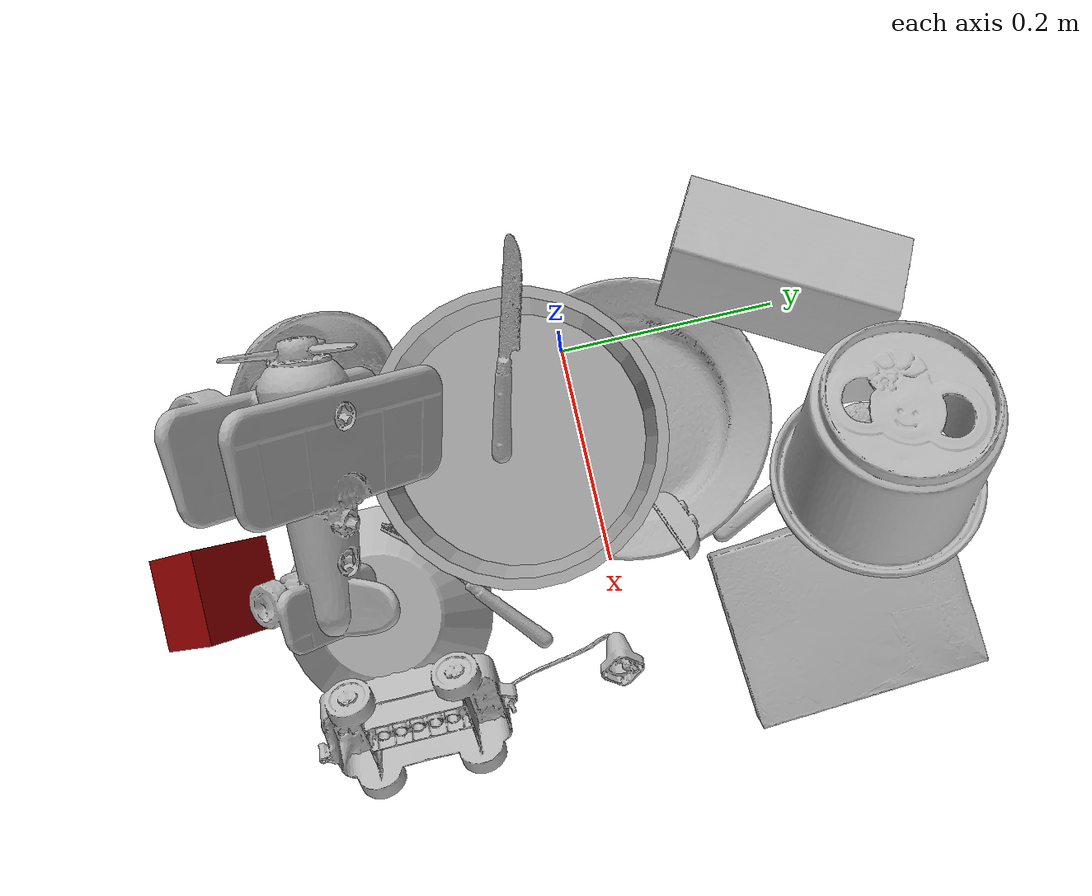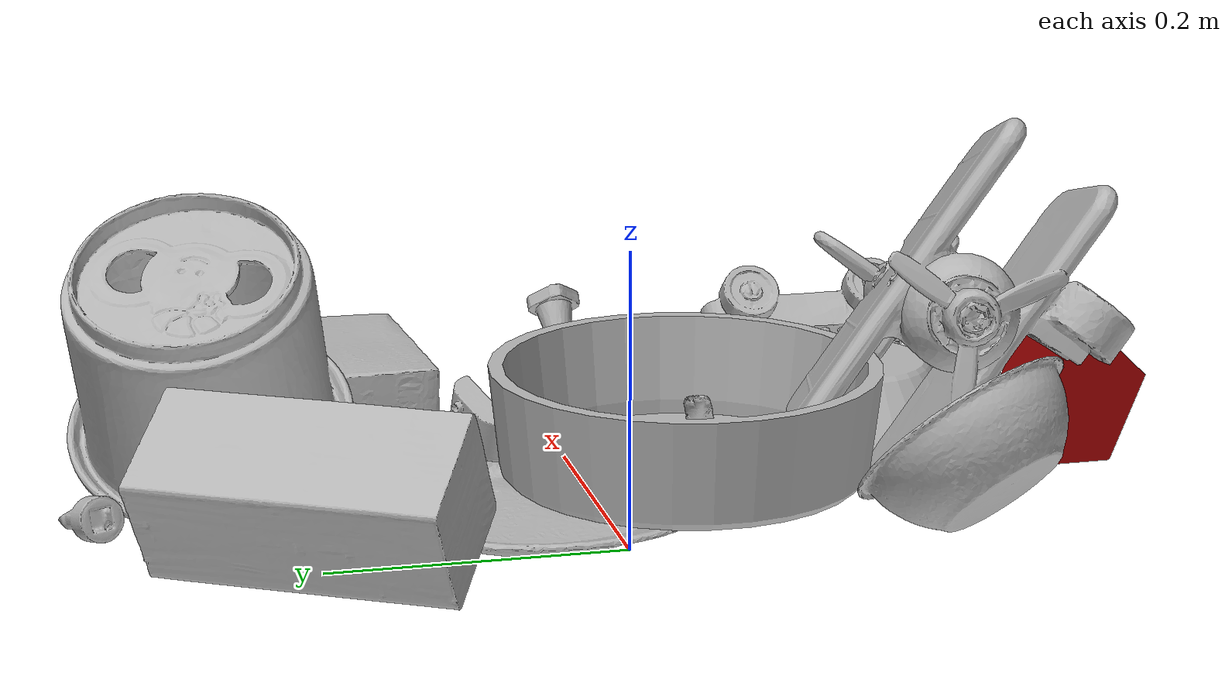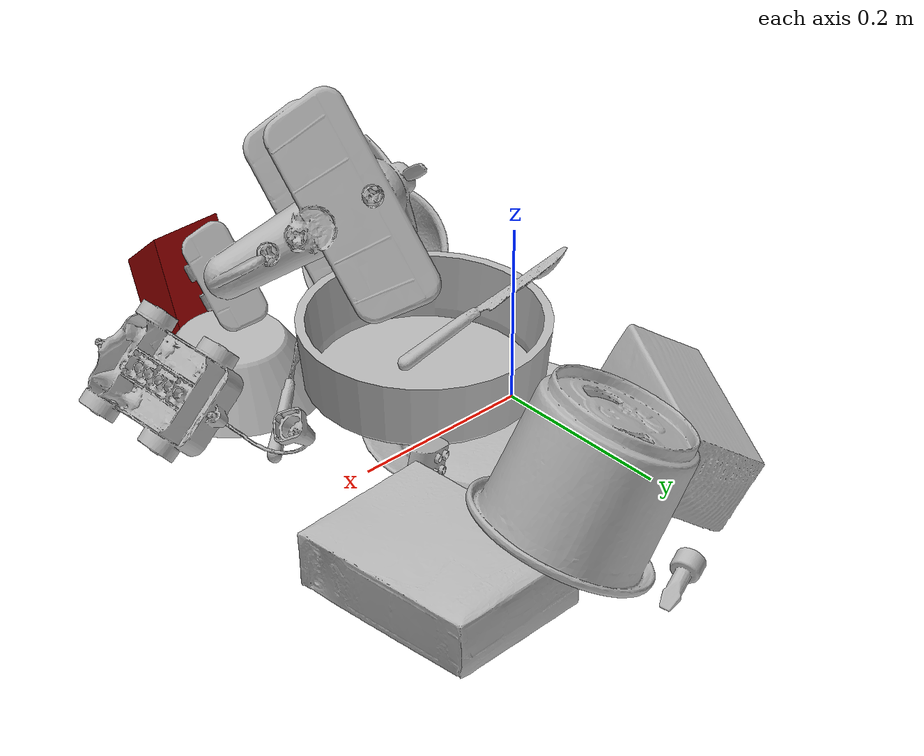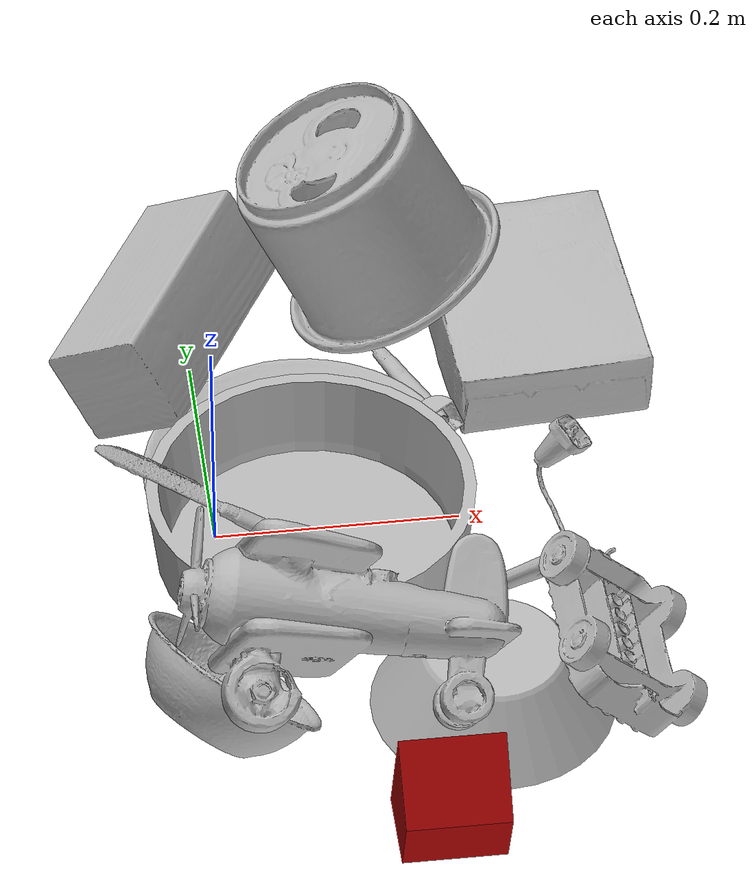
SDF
<sdf version="1.4">
  <world name="default">
    <light name="light1" type="point">
      <pose>0 0 1 0 0 0</pose>
      <diffuse>3 3 3 1</diffuse>
      <specular>3 3 3 1</specular>
    </light>
    <light name="light2" type="point">
      <pose>0 0.5 2 0 0 0</pose>
      <diffuse>1 1 1 1</diffuse>
      <specular>1 1 1 1</specular>
    </light>
    <light name="light3" type="point">
      <pose>0 0.5 2 0 0 0</pose>
      <diffuse>3 3 3 1</diffuse>
      <specular>3 3 3 1</specular>
    </light>
    <scene>
      <ambient>0.7 0.7 0.7</ambient>
    </scene>
    <model name="plate1">
      <link name="link_plate1">
        <collision name="default">
          <geometry>
            <mesh>
              <uri>model://plate/collision_meshes/collision.obj</uri>
              <scale>1.0 1.0 1.0</scale>
            </mesh>
          </geometry>
          <surface>
            <friction>
              <ode>
                <mu>0.5</mu>
                <mu2>0.5</mu2>
              </ode>
            </friction>
          <contact>
        <ode>
            <max_vel>0</max_vel>
            <min_depth>0.0001</min_depth>
            <kp>1e8</kp>
        </ode>
    </contact></surface>
        </collision>
        <visual name="default">
          <geometry>
            <mesh>
              <uri>model://plate/visual_meshes/visual.dae</uri>
              <scale>1.0 1.0 1.0</scale>
            </mesh>
          </geometry>
        </visual>
        <inertial>
          <mass>0.18013060092926025</mass>
          <pose>-0.0006044624606147408 0.0002782579977065325 -0.0010561981471255422 0.0022187543261248163 -0.003225499970721242 0.452618951787785</pose>
          <inertia>
            <ixx>0.00084265455</ixx>
            <iyy>0.000834595</iyy>
            <izz>0.0016481068</izz>
            <ixy>0</ixy>
            <ixz>0</ixz>
            <iyz>0</iyz>
          </inertia>
        </inertial>
      </link>
      <pose>0.07611431926488876 0.04691082984209061 0.014048775658011436 0.001392436251451052 -0.004309248841746338 0.48402125668768414</pose>
    </model>
    <model name="plate2">
      <link name="link_plate2">
        <collision name="default">
          <geometry>
            <mesh>
              <uri>model://pan_tefal/collision_meshes/collision.obj</uri>
              <scale>1.0 1.0 1.0</scale>
            </mesh>
          </geometry>
          <surface>
            <friction>
              <ode>
                <mu>0.5</mu>
                <mu2>0.5</mu2>
              </ode>
            </friction>
          <contact>
        <ode>
            <max_vel>0</max_vel>
            <min_depth>0.0001</min_depth>
            <kp>1e8</kp>
        </ode>
    </contact></surface>
        </collision>
        <visual name="default">
          <geometry>
            <mesh>
              <uri>model://pan_tefal/visual_meshes/visual.dae</uri>
              <scale>1.0 1.0 1.0</scale>
            </mesh>
          </geometry>
        </visual>
        <inertial>
          <mass>1.1554980278015137</mass>
          <pose>-0.00018001958960667253 3.279018710600212e-05 -0.008514934219419956 0.0008190268412404128 -0.0003301434555644904 -0.33185316474518306</pose>
          <inertia>
            <ixx>0.007976347</ixx>
            <iyy>0.008027771</iyy>
            <izz>0.014682918</izz>
            <ixy>0</ixy>
            <ixz>0</ixz>
            <iyz>0</iyz>
          </inertia>
        </inertial>
      </link>
      <pose>0.0725797563791275 -0.055441368371248245 0.064163438975811 0.0011067661375380624 -0.00325836222972426 0.7324127728434017</pose>
    </model>
    <model name="bowl1">
      <link name="link_bowl1">
        <collision name="default">
          <geometry>
            <mesh>
              <uri>model://bowl/collision_meshes/collision.obj</uri>
              <scale>1.0 1.0 1.0</scale>
            </mesh>
          </geometry>
          <surface>
            <friction>
              <ode>
                <mu>0.5</mu>
                <mu2>0.5</mu2>
              </ode>
            </friction>
          <contact>
        <ode>
            <max_vel>0</max_vel>
            <min_depth>0.0001</min_depth>
            <kp>1e8</kp>
        </ode>
    </contact></surface>
        </collision>
        <visual name="default">
          <geometry>
            <mesh>
              <uri>model://bowl/visual_meshes/visual.dae</uri>
              <scale>1.0 1.0 1.0</scale>
            </mesh>
          </geometry>
        </visual>
        <inertial>
          <mass>0.08154366910457611</mass>
          <pose>0.0002044497523456812 -0.0010302083101123571 -0.0008042664267122746 -0.01576409235239578 0.014546819263349199 0.7140418673414882</pose>
          <inertia>
            <ixx>0.00018731231</ixx>
            <iyy>0.000183127</iyy>
            <izz>0.00031512365</izz>
            <ixy>0</ixy>
            <ixz>0</ixz>
            <iyz>0</iyz>
          </inertia>
        </inertial>
      </link>
      <pose>-0.021872175857424736 -0.23212486505508423 0.05180564522743225 0.7851160048859591 -0.19579409163485445 2.344805249619409</pose>
    </model>
    <model name="bowl2">
      <link name="link_bowl2">
        <collision name="default">
          <geometry>
            <mesh>
              <uri>model://bowl_a/collision_meshes/collision.obj</uri>
              <scale>1.0 1.0 1.0</scale>
            </mesh>
          </geometry>
          <surface>
            <friction>
              <ode>
                <mu>0.5</mu>
                <mu2>0.5</mu2>
              </ode>
            </friction>
          <contact>
        <ode>
            <max_vel>0</max_vel>
            <min_depth>0.0001</min_depth>
            <kp>1e8</kp>
        </ode>
    </contact></surface>
        </collision>
        <visual name="default">
          <geometry>
            <mesh>
              <uri>model://bowl_a/visual_meshes/visual.dae</uri>
              <scale>1.0 1.0 1.0</scale>
            </mesh>
          </geometry>
        </visual>
        <inertial>
          <mass>0.4363987147808075</mass>
          <pose>0.0002786752884276211 4.73113359475974e-05 -0.0013765294570475817 -0.0009805318297205425 -0.0010938254473046036 -0.19123908587825994</pose>
          <inertia>
            <ixx>0.0012424473</ixx>
            <iyy>0.001250075</iyy>
            <izz>0.0022097398</izz>
            <ixy>0</ixy>
            <ixz>0</ixz>
            <iyz>0</iyz>
          </inertia>
        </inertial>
      </link>
      <pose>0.19921106100082397 -0.21214506030082703 0.030101153999567032 3.141576884474311 5.16324751641293e-06 0.954296284068788</pose>
    </model>
    <model name="silverware1">
      <link name="link_silverware1">
        <collision name="default">
          <geometry>
            <mesh>
              <uri>model://spoon/collision_meshes/collision.obj</uri>
              <scale>1.0 1.0 1.0</scale>
            </mesh>
          </geometry>
          <surface>
            <friction>
              <ode>
                <mu>0.5</mu>
                <mu2>0.5</mu2>
              </ode>
            </friction>
          <contact>
        <ode>
            <max_vel>0</max_vel>
            <min_depth>0.0001</min_depth>
            <kp>1e8</kp>
        </ode>
    </contact></surface>
        </collision>
        <visual name="default">
          <geometry>
            <mesh>
              <uri>model://spoon/visual_meshes/visual.dae</uri>
              <scale>1.0 1.0 1.0</scale>
            </mesh>
          </geometry>
        </visual>
        <inertial>
          <mass>0.034700214862823486</mass>
          <pose>-0.00552632100880146 -0.0016034168656915426 -0.0007271654903888702 0.03521477925438783 -0.03906582568380071 0.006150611591128785</pose>
          <inertia>
            <ixx>1.9300821e-06</ixx>
            <iyy>0.00013203312</iyy>
            <izz>0.00013298499</izz>
            <ixy>0</ixy>
            <ixz>0</ixz>
            <iyz>0</iyz>
          </inertia>
        </inertial>
      </link>
      <pose>0.16089767217636108 0.18981842696666718 0.010133577510714531 3.1049922051838084 -0.06197781871519313 2.0198299134235613</pose>
    </model>
    <model name="box1">
      <link name="link_box1">
        <collision name="default">
          <geometry>
            <mesh>
              <uri>model://cracker_box/collision_meshes/collision.obj</uri>
              <scale>1.0 1.0 1.0</scale>
            </mesh>
          </geometry>
          <surface>
            <friction>
              <ode>
                <mu>0.5</mu>
                <mu2>0.5</mu2>
              </ode>
            </friction>
          <contact>
        <ode>
            <max_vel>0</max_vel>
            <min_depth>0.0001</min_depth>
            <kp>1e8</kp>
        </ode>
    </contact></surface>
        </collision>
        <visual name="default">
          <geometry>
            <mesh>
              <uri>model://cracker_box/visual_meshes/visual.dae</uri>
              <scale>1.0 1.0 1.0</scale>
            </mesh>
          </geometry>
        </visual>
        <inertial>
          <mass>1.831273078918457</mass>
          <pose>0.000946414191275835 0.00025434247800149024 -0.0017029533628374338 -0.0003162074786093215 -0.01110648680647863 0.0025467950006863548</pose>
          <inertia>
            <ixx>0.0046579414</ixx>
            <iyy>0.0076911766</iyy>
            <izz>0.010976015</izz>
            <ixy>0</ixy>
            <ixz>0</ixz>
            <iyz>0</iyz>
          </inertia>
        </inertial>
      </link>
      <pose>0.2861180901527405 0.19917824864387512 0.035531334578990936 3.137204173567486 -0.016543004172524373 1.6431319057917784</pose>
    </model>
    <model name="box2">
      <link name="link_box2">
        <collision name="default">
          <geometry>
            <mesh>
              <uri>model://wood_block/collision_meshes/collision.obj</uri>
              <scale>1.0 1.0 1.0</scale>
            </mesh>
          </geometry>
          <surface>
            <friction>
              <ode>
                <mu>0.5</mu>
                <mu2>0.5</mu2>
              </ode>
            </friction>
          <contact>
        <ode>
            <max_vel>0</max_vel>
            <min_depth>0.0001</min_depth>
            <kp>1e8</kp>
        </ode>
    </contact></surface>
        </collision>
        <visual name="default">
          <geometry>
            <mesh>
              <uri>model://wood_block/visual_meshes/visual.dae</uri>
              <scale>1.0 1.0 1.0</scale>
            </mesh>
          </geometry>
        </visual>
        <inertial>
          <mass>1.0038666725158691</mass>
          <pose>-5.813315510749817e-06 -0.000570809468626976 0.0002640858292579651 -0.05221020962952386 -0.005192696059900718 -0.006861377701075274</pose>
          <inertia>
            <ixx>0.0013433257</ixx>
            <iyy>0.0042435657</iyy>
            <izz>0.0042276927</izz>
            <ixy>0</ixy>
            <ixz>0</ixz>
            <iyz>0</iyz>
          </inertia>
        </inertial>
      </link>
      <pose>-0.019862249493598938 0.20906616747379303 0.059366654604673386 1.0518770805923816 -0.001503038929604439 1.0719479782102317</pose>
    </model>
    <model name="cup1">
      <link name="link_cup1">
        <collision name="default">
          <geometry>
            <mesh>
              <uri>model://i_cups/collision_meshes/collision.obj</uri>
              <scale>2.0 2.0 2.0</scale>
            </mesh>
          </geometry>
          <surface>
            <friction>
              <ode>
                <mu>0.5</mu>
                <mu2>0.5</mu2>
              </ode>
            </friction>
          <contact>
        <ode>
            <max_vel>0</max_vel>
            <min_depth>0.0001</min_depth>
            <kp>1e8</kp>
        </ode>
    </contact></surface>
        </collision>
        <visual name="default">
          <geometry>
            <mesh>
              <uri>model://i_cups/visual_meshes/visual.dae</uri>
              <scale>2.0 2.0 2.0</scale>
            </mesh>
          </geometry>
        </visual>
        <inertial>
          <mass>0.6038269996643066</mass>
          <pose>0.00022479970357380807 0.0003359453985467553 -0.001715799910016358 -0.02898255198870416 -0.03987340808103542 -0.3459203892901821</pose>
          <inertia>
            <ixx>0.0033440301</ixx>
            <iyy>0.003373493</iyy>
            <izz>0.0037374943</izz>
            <ixy>0</ixy>
            <ixz>0</ixz>
            <iyz>0</iyz>
          </inertia>
        </inertial>
      </link>
      <pose>0.14848269522190094 0.26144999265670776 0.11038369685411453 2.66217503031617 0.08866232002015055 1.451758432953369</pose>
    </model>
    <model name="silverware2">
      <link name="link_silverware2">
        <collision name="default">
          <geometry>
            <mesh>
              <uri>model://knife/collision_meshes/collision.obj</uri>
              <scale>1.0 1.0 1.0</scale>
            </mesh>
          </geometry>
          <surface>
            <friction>
              <ode>
                <mu>0.5</mu>
                <mu2>0.5</mu2>
              </ode>
            </friction>
          <contact>
        <ode>
            <max_vel>0</max_vel>
            <min_depth>0.0001</min_depth>
            <kp>1e8</kp>
        </ode>
    </contact></surface>
        </collision>
        <visual name="default">
          <geometry>
            <mesh>
              <uri>model://knife/visual_meshes/visual.dae</uri>
              <scale>1.0 1.0 1.0</scale>
            </mesh>
          </geometry>
        </visual>
        <inertial>
          <mass>0.01351180113852024</mass>
          <pose>-0.023785246536135674 0.0015275131445378065 5.062015407020226e-05 0.073058244240525 0.017248418380522417 -0.007409818685807072</pose>
          <inertia>
            <ixx>3.8351965e-07</ixx>
            <iyy>5.1910156e-05</iyy>
            <izz>5.2033673e-05</izz>
            <ixy>0</ixy>
            <ixz>0</ixz>
            <iyz>0</iyz>
          </inertia>
        </inertial>
      </link>
      <pose>-0.0033665522933006287 -0.046924132853746414 0.08453734219074249 -0.1398582149236266 -0.454266553641615 2.839677720234634</pose>
    </model>
    <model name="silverware3">
      <link name="link_silverware3">
        <collision name="default">
          <geometry>
            <mesh>
              <uri>model://fork/collision_meshes/collision.obj</uri>
              <scale>1.0 1.0 1.0</scale>
            </mesh>
          </geometry>
          <surface>
            <friction>
              <ode>
                <mu>0.5</mu>
                <mu2>0.5</mu2>
              </ode>
            </friction>
          <contact>
        <ode>
            <max_vel>0</max_vel>
            <min_depth>0.0001</min_depth>
            <kp>1e8</kp>
        </ode>
    </contact></surface>
        </collision>
        <visual name="default">
          <geometry>
            <mesh>
              <uri>model://fork/visual_meshes/visual.dae</uri>
              <scale>1.0 1.0 1.0</scale>
            </mesh>
          </geometry>
        </visual>
        <inertial>
          <mass>0.030749449506402016</mass>
          <pose>-0.029570044949650764 0.0004658822435885668 0.00032188615296036005 -0.013551266353778695 -0.010977839115777554 0.014453902178384312</pose>
          <inertia>
            <ixx>1.0779423e-06</ixx>
            <iyy>8.0277954e-05</iyy>
            <izz>8.076011e-05</izz>
            <ixy>0</ixy>
            <ixz>0</ixz>
            <iyz>0</iyz>
          </inertia>
        </inertial>
      </link>
      <pose>0.19028599560260773 -0.12934717535972595 0.03806070238351822 -1.6603293402023398 -0.3258935466727258 -2.47416889465025</pose>
    </model>
    <model name="toy1">
      <link name="link_toy1">
        <collision name="default">
          <geometry>
            <mesh>
              <uri>model://e_toy_airplane/collision_meshes/collision.obj</uri>
              <scale>1.0 1.0 1.0</scale>
            </mesh>
          </geometry>
          <surface>
            <friction>
              <ode>
                <mu>0.5</mu>
                <mu2>0.5</mu2>
              </ode>
            </friction>
          <contact>
        <ode>
            <max_vel>0</max_vel>
            <min_depth>0.0001</min_depth>
            <kp>1e8</kp>
        </ode>
    </contact></surface>
        </collision>
        <visual name="default">
          <geometry>
            <mesh>
              <uri>model://e_toy_airplane/visual_meshes/visual.dae</uri>
              <scale>1.0 1.0 1.0</scale>
            </mesh>
          </geometry>
        </visual>
        <inertial>
          <mass>0.01770107075572014</mass>
          <pose>0.00011740486661437899 -2.248296732432209e-05 -0.011187206022441387 0.005518513464699853 0.009228302242376646 0.15041570361631973</pose>
          <inertia>
            <ixx>5.4025695e-06</ixx>
            <iyy>5.3473045e-06</iyy>
            <izz>1.6236847e-06</izz>
            <ixy>0</ixy>
            <ixz>0</ixz>
            <iyz>0</iyz>
          </inertia>
        </inertial>
      </link>
      <pose>0.11316162347793579 0.3440079689025879 0.010808710008859634 -2.145174459698433 1.1028206572408112 -1.7339096086101569</pose>
    </model>
    <model name="toy2">
      <link name="link_toy2">
        <collision name="default">
          <geometry>
            <mesh>
              <uri>model://a_toy_airplane/collision_meshes/collision.obj</uri>
              <scale>1.0 1.0 1.0</scale>
            </mesh>
          </geometry>
          <surface>
            <friction>
              <ode>
                <mu>0.5</mu>
                <mu2>0.5</mu2>
              </ode>
            </friction>
          <contact>
        <ode>
            <max_vel>0</max_vel>
            <min_depth>0.0001</min_depth>
            <kp>1e8</kp>
        </ode>
    </contact></surface>
        </collision>
        <visual name="default">
          <geometry>
            <mesh>
              <uri>model://a_toy_airplane/visual_meshes/visual.dae</uri>
              <scale>1.0 1.0 1.0</scale>
            </mesh>
          </geometry>
        </visual>
        <inertial>
          <mass>1.6391528844833374</mass>
          <pose>0.02516508661210537 -0.003707319963723421 -0.0011962438002228737 -0.012016999892079352 -0.14663507149587088 0.004149061575203148</pose>
          <inertia>
            <ixx>0.0059525487</ixx>
            <iyy>0.008674072</iyy>
            <izz>0.01015627</izz>
            <ixy>0</ixy>
            <ixz>0</ixz>
            <iyz>0</iyz>
          </inertia>
        </inertial>
      </link>
      <pose>0.08022744208574295 -0.2344895452260971 0.13222648203372955 0.9022676400269117 -0.07472484719220188 -3.112732372392692</pose>
    </model>
    <model name="toy3">
      <link name="link_toy3">
        <collision name="default">
          <geometry>
            <mesh>
              <uri>model://g_lego_duplo/collision_meshes/collision.obj</uri>
              <scale>1.0 1.0 1.0</scale>
            </mesh>
          </geometry>
          <surface>
            <friction>
              <ode>
                <mu>0.5</mu>
                <mu2>0.5</mu2>
              </ode>
            </friction>
          <contact>
        <ode>
            <max_vel>0</max_vel>
            <min_depth>0.0001</min_depth>
            <kp>1e8</kp>
        </ode>
    </contact></surface>
        </collision>
        <visual name="default">
          <geometry>
            <mesh>
              <uri>model://g_lego_duplo/visual_meshes/visual.dae</uri>
              <scale>1.0 1.0 1.0</scale>
            </mesh>
          </geometry>
        </visual>
        <inertial>
          <mass>0.5092288255691528</mass>
          <pose>-0.05004768446087837 0.0017554641235619783 0.0038806775119155645 0.010963010010498962 0.03810823590924119 -0.09653024292159736</pose>
          <inertia>
            <ixx>0.00073787844</ixx>
            <iyy>0.002230844</iyy>
            <izz>0.002790868</izz>
            <ixy>0</ixy>
            <ixz>0</ixz>
            <iyz>0</iyz>
          </inertia>
        </inertial>
      </link>
      <pose>0.2944890558719635 -0.14186200499534607 0.054993852972984314 -2.4018425092536413 -1.179367262897062e-05 1.5930614114313608</pose>
    </model>
    <model name="toy4">
      <link name="link_toy4">
        <collision name="default">
          <geometry>
            <mesh>
              <uri>model://a_lego_duplo/collision_meshes/collision.obj</uri>
              <scale>1.0 1.0 1.0</scale>
            </mesh>
          </geometry>
          <surface>
            <friction>
              <ode>
                <mu>0.5</mu>
                <mu2>0.5</mu2>
              </ode>
            </friction>
          <contact>
        <ode>
            <max_vel>0</max_vel>
            <min_depth>0.0001</min_depth>
            <kp>1e8</kp>
        </ode>
    </contact></surface>
        </collision>
        <visual name="default">
          <geometry>
            <mesh>
              <uri>model://a_lego_duplo/visual_meshes/visual.dae</uri>
              <scale>1.0 1.0 1.0</scale>
            </mesh>
          </geometry>
        </visual>
        <inertial>
          <mass>0.03161923587322235</mass>
          <pose>-0.00011337598698446527 0.00018517524586059153 0.00036926084430888295 -0.014116977368405541 -0.00012565500284871778 6.143069663272407e-05</pose>
          <inertia>
            <ixx>4.0538393e-06</ixx>
            <iyy>9.081488e-06</iyy>
            <izz>1.1249442e-05</izz>
            <ixy>0</ixy>
            <ixz>0</ixz>
            <iyz>0</iyz>
          </inertia>
        </inertial>
      </link>
      <pose>0.1770833134651184 0.0700363889336586 0.03854520246386528 -1.6201187269815478 -0.3292286399646808 0.3732841329073729</pose>
    </model>
    <model name="toy5">
      <link name="link_toy5">
        <collision name="default">
          <geometry>
            <mesh>
              <uri>model://prism/collision_meshes/collision.obj</uri>
              <scale>1.0 1.0 1.0</scale>
            </mesh>
          </geometry>
          <surface>
            <friction>
              <ode>
                <mu>0.5</mu>
                <mu2>0.5</mu2>
              </ode>
            </friction>
          <contact>
        <ode>
            <max_vel>0</max_vel>
            <min_depth>0.0001</min_depth>
            <kp>1e8</kp>
        </ode>
    </contact></surface>
        </collision>
        <visual name="default">
          <geometry>
            <mesh>
              <uri>model://prism/visual_meshes/visual.dae</uri>
              <scale>1.0 1.0 1.0</scale>
            </mesh>
          </geometry>
        </visual>
        <inertial>
          <mass>0.5650969743728638</mass>
          <pose>-9.85359656624496e-05 -4.96157269935793e-07 -0.0033869100734591484 0.0 0.006559179369129768 0.0</pose>
          <inertia>
            <ixx>0.00050999306</ixx>
            <iyy>0.00061633316</iyy>
            <izz>0.00075493456</izz>
            <ixy>0</ixy>
            <ixz>0</ixz>
            <iyz>0</iyz>
          </inertia>
        </inertial>
      </link>
      <pose>0.14671984314918518 -0.36066630482673645 0.04270409047603607 -3.141592505610708 -1.19413782170231 -1.576372472748145</pose>
    </model>
  <physics type="ode">
      <max_contacts>50</max_contacts>
      <ode>
        <solver>
          <type>quick</type>
          <iters>75</iters>
        </solver>
        <constraints>
          <contact_max_correcting_vel>0</contact_max_correcting_vel>
          <contact_surface_layer>0</contact_surface_layer>
        </constraints>
      </ode>
    </physics></world>
</sdf>
